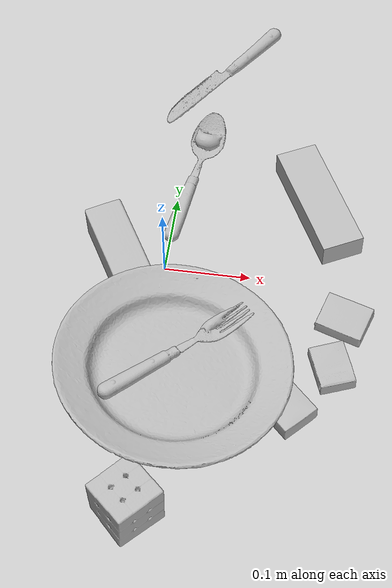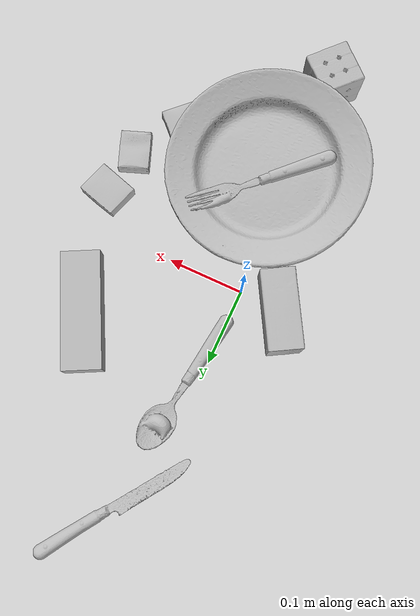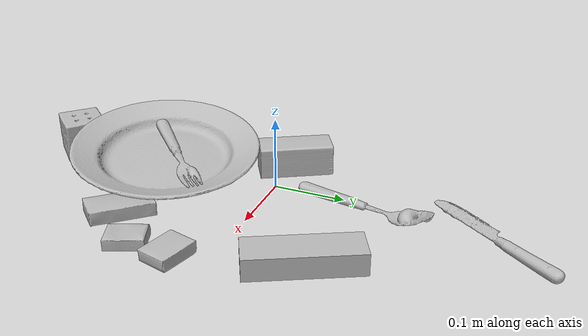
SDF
<sdf version="1.4">
  <world name="default">
    <light name="light1" type="point">
      <pose>0 0 1 0 0 0</pose>
      <diffuse>3 3 3 1</diffuse>
      <specular>3 3 3 1</specular>
    </light>
    <light name="light2" type="point">
      <pose>0 0.5 2 0 0 0</pose>
      <diffuse>1 1 1 1</diffuse>
      <specular>1 1 1 1</specular>
    </light>
    <light name="light3" type="point">
      <pose>0 0.5 2 0 0 0</pose>
      <diffuse>3 3 3 1</diffuse>
      <specular>3 3 3 1</specular>
    </light>
    <scene>
      <ambient>0.7 0.7 0.7</ambient>
    </scene>
    <model name="box11">
      <link name="link_box11">
        <collision name="default">
          <geometry>
            <mesh>
              <uri>model://rubiks_cube/collision_meshes/collision.obj</uri>
              <scale>1.0 1.0 1.0</scale>
            </mesh>
          </geometry>
          <surface>
            <friction>
              <ode>
                <mu>0.5</mu>
                <mu2>0.5</mu2>
              </ode>
            </friction>
          <contact>
        <ode>
            <max_vel>0</max_vel>
            <min_depth>0.0001</min_depth>
            <kp>1e8</kp>
        </ode>
    </contact></surface>
        </collision>
        <visual name="default">
          <geometry>
            <mesh>
              <uri>model://rubiks_cube/visual_meshes/visual.dae</uri>
              <scale>1.0 1.0 1.0</scale>
            </mesh>
          </geometry>
        </visual>
        <inertial>
          <mass>0.14537504315376282</mass>
          <pose>2.6721039830590598e-05 5.2569666877388954e-05 -7.264316082000732e-06 -0.05467316775404926 -0.09814130205097539 -0.03445549690793288</pose>
          <inertia>
            <ixx>8.032947e-05</ixx>
            <iyy>7.9954865e-05</iyy>
            <izz>8.099513e-05</izz>
            <ixy>0</ixy>
            <ixz>0</ixz>
            <iyz>0</iyz>
          </inertia>
        </inertial>
      </link>
      <pose>0.009245594963431358 -0.30727073550224304 0.02867920882999897 1.2717577290872437e-06 1.836674938737044e-05 2.390999837980269</pose>
    </model>
    <model name="box12">
      <link name="link_box12">
        <collision name="default">
          <geometry>
            <mesh>
              <uri>model://cracker_box/collision_meshes/collision.obj</uri>
              <scale>0.25 0.25 0.25</scale>
            </mesh>
          </geometry>
          <surface>
            <friction>
              <ode>
                <mu>0.5</mu>
                <mu2>0.5</mu2>
              </ode>
            </friction>
          <contact>
        <ode>
            <max_vel>0</max_vel>
            <min_depth>0.0001</min_depth>
            <kp>1e8</kp>
        </ode>
    </contact></surface>
        </collision>
        <visual name="default">
          <geometry>
            <mesh>
              <uri>model://cracker_box/visual_meshes/visual.dae</uri>
              <scale>0.25 0.25 0.25</scale>
            </mesh>
          </geometry>
        </visual>
        <inertial>
          <mass>0.04629049822688103</mass>
          <pose>0.00023660360602661967 6.358561950037256e-05 -0.00042573834070935845 -0.00031620769195764 -0.01110649332573822 0.0025467952358288496</pose>
          <inertia>
            <ixx>7.358898e-06</ixx>
            <iyy>1.2150985e-05</iyy>
            <izz>1.7340568e-05</izz>
            <ixy>0</ixy>
            <ixz>0</ixz>
            <iyz>0</iyz>
          </inertia>
        </inertial>
      </link>
      <pose>0.2043871283531189 -0.11170762777328491 0.009096027351915836 -0.014050545666849261 -0.00501657034218123 1.93369162419836</pose>
    </model>
    <model name="box13">
      <link name="link_box13">
        <collision name="default">
          <geometry>
            <mesh>
              <uri>model://sugar_box/collision_meshes/collision.obj</uri>
              <scale>0.5 0.5 0.5</scale>
            </mesh>
          </geometry>
          <surface>
            <friction>
              <ode>
                <mu>0.5</mu>
                <mu2>0.5</mu2>
              </ode>
            </friction>
          <contact>
        <ode>
            <max_vel>0</max_vel>
            <min_depth>0.0001</min_depth>
            <kp>1e8</kp>
        </ode>
    </contact></surface>
        </collision>
        <visual name="default">
          <geometry>
            <mesh>
              <uri>model://sugar_box/visual_meshes/visual.dae</uri>
              <scale>0.5 0.5 0.5</scale>
            </mesh>
          </geometry>
        </visual>
        <inertial>
          <mass>0.06844717264175415</mass>
          <pose>0.0005171863595023751 1.924554817378521e-05 -0.00018182402709499002 -0.0004046259509043031 0.0010506635218006705 0.0026153792547683827</pose>
          <inertia>
            <ixx>1.4257497e-05</ixx>
            <iyy>4.608316e-05</iyy>
            <izz>5.5167053e-05</izz>
            <ixy>0</ixy>
            <ixz>0</ixz>
            <iyz>0</iyz>
          </inertia>
        </inertial>
      </link>
      <pose>0.14736725389957428 -0.15764614939689636 0.011411969549953938 0.0038594562792859783 -0.023298162788183367 -0.7890661536527838</pose>
    </model>
    <model name="box21">
      <link name="link_box21">
        <collision name="default">
          <geometry>
            <mesh>
              <uri>model://wood_block/collision_meshes/collision.obj</uri>
              <scale>0.5 0.5 0.5</scale>
            </mesh>
          </geometry>
          <surface>
            <friction>
              <ode>
                <mu>0.5</mu>
                <mu2>0.5</mu2>
              </ode>
            </friction>
          <contact>
        <ode>
            <max_vel>0</max_vel>
            <min_depth>0.0001</min_depth>
            <kp>1e8</kp>
        </ode>
    </contact></surface>
        </collision>
        <visual name="default">
          <geometry>
            <mesh>
              <uri>model://wood_block/visual_meshes/visual.dae</uri>
              <scale>0.5 0.5 0.5</scale>
            </mesh>
          </geometry>
        </visual>
        <inertial>
          <mass>0.22006426751613617</mass>
          <pose>-2.9066577553749084e-06 -0.00028540476341731846 0.00013204292918089777 -0.05220890442695651 -0.005192696130650637 -0.006861379915905358</pose>
          <inertia>
            <ixx>7.361981e-05</ixx>
            <iyy>0.00023256506</iyy>
            <izz>0.00023169514</izz>
            <ixy>0</ixy>
            <ixz>0</ixz>
            <iyz>0</iyz>
          </inertia>
        </inertial>
      </link>
      <pose>-0.05537736415863037 0.006186379119753838 0.02262941561639309 -0.0052242886604596485 0.005716470154541095 2.0957069988315524</pose>
    </model>
    <model name="box22">
      <link name="link_box22">
        <collision name="default">
          <geometry>
            <mesh>
              <uri>model://jenga/collision_meshes/collision.obj</uri>
              <scale>1.0 1.0 1.0</scale>
            </mesh>
          </geometry>
          <surface>
            <friction>
              <ode>
                <mu>0.5</mu>
                <mu2>0.5</mu2>
              </ode>
            </friction>
          <contact>
        <ode>
            <max_vel>0</max_vel>
            <min_depth>0.0001</min_depth>
            <kp>1e8</kp>
        </ode>
    </contact></surface>
        </collision>
        <visual name="default">
          <geometry>
            <mesh>
              <uri>model://jenga/visual_meshes/visual.dae</uri>
              <scale>1.0 1.0 1.0</scale>
            </mesh>
          </geometry>
        </visual>
        <inertial>
          <mass>0.1883949637413025</mass>
          <pose>-2.502855807051674e-07 -0.00010250010382151231 -4.0923405322246253e-05 0.0 -7.342154049184251e-07 0.0</pose>
          <inertia>
            <ixx>5.213346e-05</ixx>
            <iyy>0.0003532549</iyy>
            <izz>0.00037712968</izz>
            <ixy>0</ixy>
            <ixz>0</ixz>
            <iyz>0</iyz>
          </inertia>
        </inertial>
      </link>
      <pose>0.16920344531536102 0.10874693840742111 0.014999995939433575 2.1637252266128393e-08 3.7181664585270065e-09 -1.092701774967119</pose>
    </model>
    <model name="box23">
      <link name="link_box23">
        <collision name="default">
          <geometry>
            <mesh>
              <uri>model://pudding_box/collision_meshes/collision.obj</uri>
              <scale>0.5 0.5 0.5</scale>
            </mesh>
          </geometry>
          <surface>
            <friction>
              <ode>
                <mu>0.5</mu>
                <mu2>0.5</mu2>
              </ode>
            </friction>
          <contact>
        <ode>
            <max_vel>0</max_vel>
            <min_depth>0.0001</min_depth>
            <kp>1e8</kp>
        </ode>
    </contact></surface>
        </collision>
        <visual name="default">
          <geometry>
            <mesh>
              <uri>model://pudding_box/visual_meshes/visual.dae</uri>
              <scale>0.5 0.5 0.5</scale>
            </mesh>
          </geometry>
        </visual>
        <inertial>
          <mass>0.030779412016272545</mass>
          <pose>0.00024474109522998333 0.0004033942532259971 -0.0002594413817860186 0.0052131022413302 -0.00660379919873188 0.020079828882866795</pose>
          <inertia>
            <ixx>8.6986365e-06</ixx>
            <iyy>5.8525034e-06</iyy>
            <izz>1.2845808e-05</izz>
            <ixy>0</ixy>
            <ixz>0</ixz>
            <iyz>0</iyz>
          </inertia>
        </inertial>
      </link>
      <pose>0.21302922070026398 -0.04875338822603226 0.009862899780273438 0.02235009146448115 -0.01139059845802677 1.2747838315395492</pose>
    </model>
    <model name="plate1">
      <link name="link_plate1">
        <collision name="default">
          <geometry>
            <mesh>
              <uri>model://plate/collision_meshes/collision.obj</uri>
              <scale>1.0 1.0 1.0</scale>
            </mesh>
          </geometry>
          <surface>
            <friction>
              <ode>
                <mu>0.5</mu>
                <mu2>0.5</mu2>
              </ode>
            </friction>
          <contact>
        <ode>
            <max_vel>0</max_vel>
            <min_depth>0.0001</min_depth>
            <kp>1e8</kp>
        </ode>
    </contact></surface>
        </collision>
        <visual name="default">
          <geometry>
            <mesh>
              <uri>model://plate/visual_meshes/visual.dae</uri>
              <scale>1.0 1.0 1.0</scale>
            </mesh>
          </geometry>
        </visual>
        <inertial>
          <mass>0.2551877498626709</mass>
          <pose>-0.0006044633337296546 0.0002782584633678198 -0.0010561984963715076 0.002218758596895186 -0.003225500510611216 0.45261892370472845</pose>
          <inertia>
            <ixx>0.0011937734</ixx>
            <iyy>0.0011823553</iyy>
            <izz>0.002334842</izz>
            <ixy>0</ixy>
            <ixz>0</ixz>
            <iyz>0</iyz>
          </inertia>
        </inertial>
      </link>
      <pose>0.03439109027385712 -0.15151505172252655 0.04073617607355118 0.014979016571859429 -0.09655306384484538 -2.6338307069569646</pose>
    </model>
    <model name="silverware1">
      <link name="link_silverware1">
        <collision name="default">
          <geometry>
            <mesh>
              <uri>model://knife/collision_meshes/collision.obj</uri>
              <scale>1.0 1.0 1.0</scale>
            </mesh>
          </geometry>
          <surface>
            <friction>
              <ode>
                <mu>0.5</mu>
                <mu2>0.5</mu2>
              </ode>
            </friction>
          <contact>
        <ode>
            <max_vel>0</max_vel>
            <min_depth>0.0001</min_depth>
            <kp>1e8</kp>
        </ode>
    </contact></surface>
        </collision>
        <visual name="default">
          <geometry>
            <mesh>
              <uri>model://knife/visual_meshes/visual.dae</uri>
              <scale>1.0 1.0 1.0</scale>
            </mesh>
          </geometry>
        </visual>
        <inertial>
          <mass>0.030903667211532593</mass>
          <pose>-0.023785250261425972 0.0015275125624611974 5.062023410573602e-05 0.07305665398911224 0.017248417197799442 -0.0074098217442817044</pose>
          <inertia>
            <ixx>8.7717143e-07</ixx>
            <iyy>0.00011872688</iyy>
            <izz>0.000119009375</izz>
            <ixy>0</ixy>
            <ixz>0</ixz>
            <iyz>0</iyz>
          </inertia>
        </inertial>
      </link>
      <pose>0.02829110249876976 0.3069922626018524 0.008136838674545288 -0.28172644219052995 -0.008872000542134292 -2.180593718041552</pose>
    </model>
    <model name="silverware2">
      <link name="link_silverware2">
        <collision name="default">
          <geometry>
            <mesh>
              <uri>model://spoon/collision_meshes/collision.obj</uri>
              <scale>1.0 1.0 1.0</scale>
            </mesh>
          </geometry>
          <surface>
            <friction>
              <ode>
                <mu>0.5</mu>
                <mu2>0.5</mu2>
              </ode>
            </friction>
          <contact>
        <ode>
            <max_vel>0</max_vel>
            <min_depth>0.0001</min_depth>
            <kp>1e8</kp>
        </ode>
    </contact></surface>
        </collision>
        <visual name="default">
          <geometry>
            <mesh>
              <uri>model://spoon/visual_meshes/visual.dae</uri>
              <scale>1.0 1.0 1.0</scale>
            </mesh>
          </geometry>
        </visual>
        <inertial>
          <mass>0.020994963124394417</mass>
          <pose>-0.005526323337107897 -0.00160341733135283 -0.0007271658978424966 0.035216710718480135 -0.03906584501417282 0.00615060951780049</pose>
          <inertia>
            <ixx>1.1677738e-06</ixx>
            <iyy>7.988513e-05</iyy>
            <izz>8.046103e-05</izz>
            <ixy>0</ixy>
            <ixz>0</ixz>
            <iyz>0</iyz>
          </inertia>
        </inertial>
      </link>
      <pose>0.012515202164649963 0.13336347043514252 0.00838526152074337 0.006729120972252788 0.02689296088314465 1.4166342978891262</pose>
    </model>
    <model name="silverware3">
      <link name="link_silverware3">
        <collision name="default">
          <geometry>
            <mesh>
              <uri>model://fork/collision_meshes/collision.obj</uri>
              <scale>1.0 1.0 1.0</scale>
            </mesh>
          </geometry>
          <surface>
            <friction>
              <ode>
                <mu>0.5</mu>
                <mu2>0.5</mu2>
              </ode>
            </friction>
          <contact>
        <ode>
            <max_vel>0</max_vel>
            <min_depth>0.0001</min_depth>
            <kp>1e8</kp>
        </ode>
    </contact></surface>
        </collision>
        <visual name="default">
          <geometry>
            <mesh>
              <uri>model://fork/visual_meshes/visual.dae</uri>
              <scale>1.0 1.0 1.0</scale>
            </mesh>
          </geometry>
        </visual>
        <inertial>
          <mass>0.012144052423536777</mass>
          <pose>-0.029570043087005615 0.0004658822144847363 0.0003218860656488687 -0.013551171335247731 -0.01097783699854739 0.014453902564514984</pose>
          <inertia>
            <ixx>4.257177e-07</ixx>
            <iyy>3.170462e-05</iyy>
            <izz>3.1895037e-05</izz>
            <ixy>0</ixy>
            <ixz>0</ixz>
            <iyz>0</iyz>
          </inertia>
        </inertial>
      </link>
      <pose>0.034143246710300446 -0.13415931165218353 0.04090301692485809 0.08168023111069651 0.07236029983365974 0.7500832654172042</pose>
    </model>
  <physics type="ode">
      <max_contacts>50</max_contacts>
      <ode>
        <solver>
          <type>quick</type>
          <iters>75</iters>
        </solver>
        <constraints>
          <contact_max_correcting_vel>0</contact_max_correcting_vel>
          <contact_surface_layer>0</contact_surface_layer>
        </constraints>
      </ode>
    </physics></world>
</sdf>
